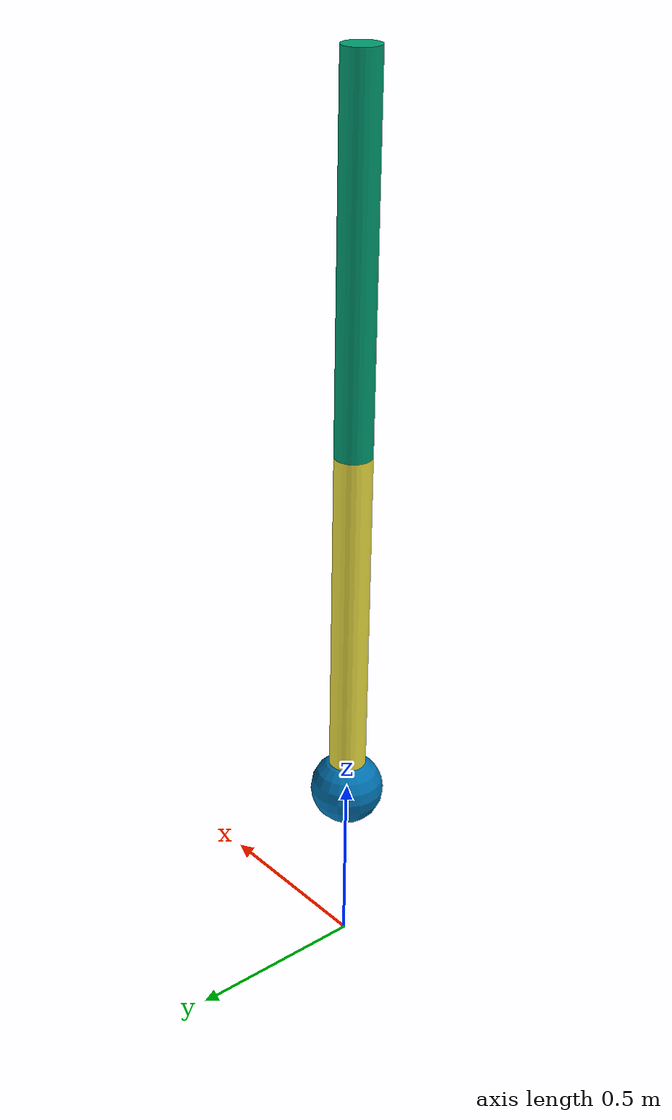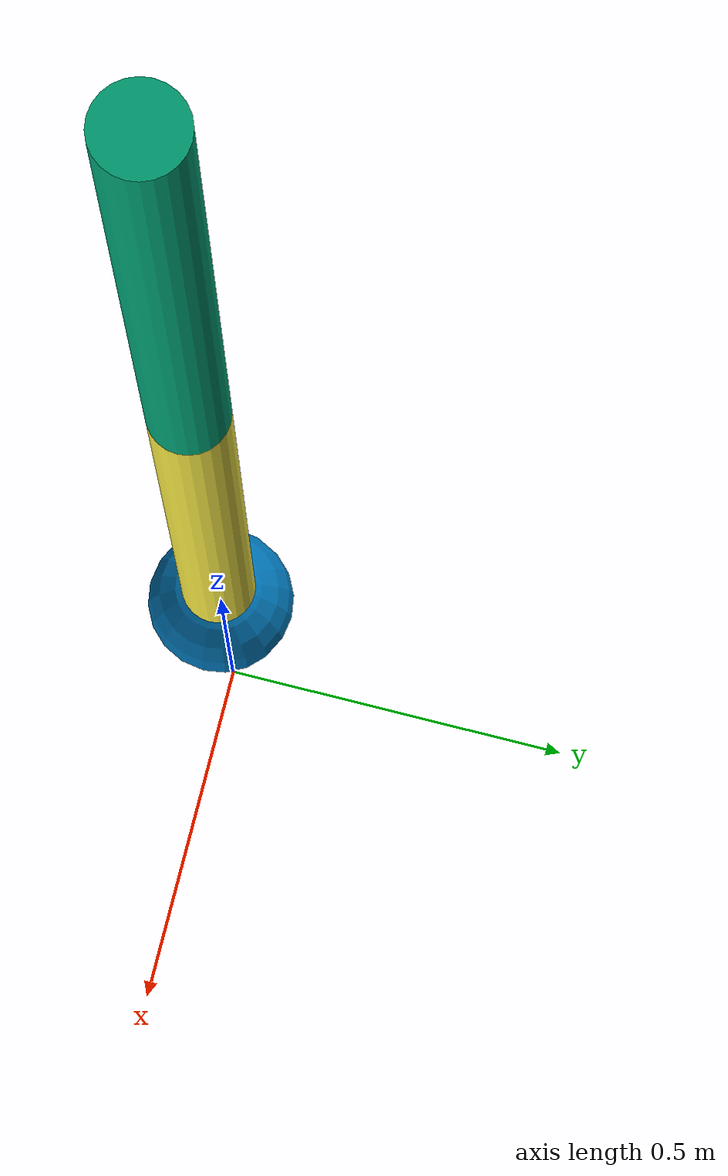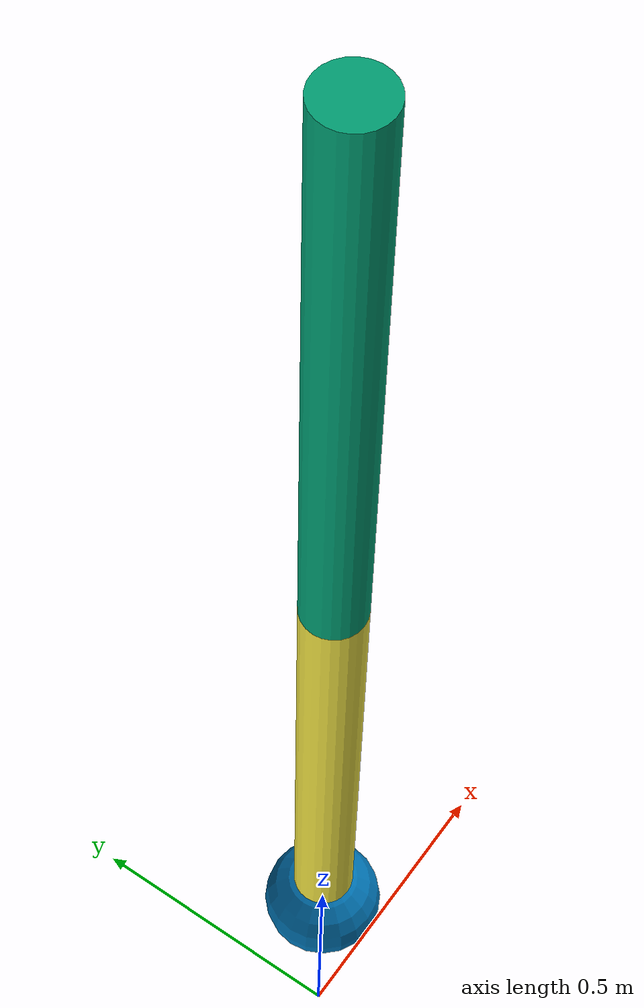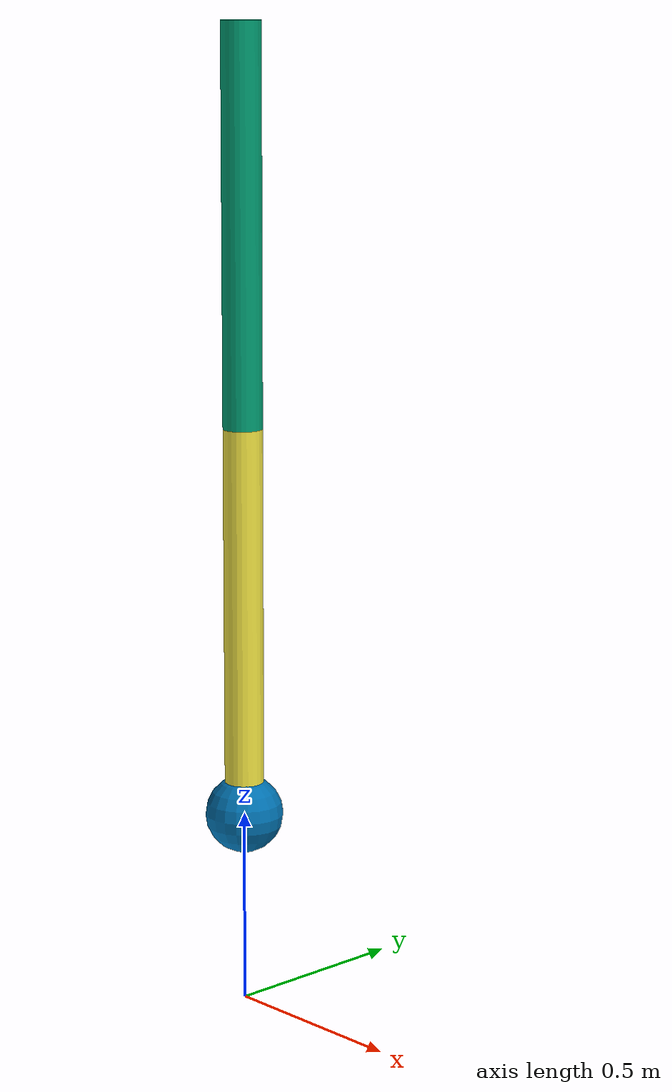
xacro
<?xml version="1.0"?>
<robot xmlns:xacro="http://www.ros.org/wiki/xacro" name="double_pendulum">
    <xacro:arg name="mujoco_model_path" default="/tmp/mujoco" />
    <xacro:arg name="autolimits" default="true" />
    <xacro:arg name="balanceinertia" default="true" />
    <!-- Mujoco options -->
    <xacro:arg name="integrator" default="implicitfast" />
    <xacro:arg name="gravity" default="0 0 -9.81" />
    <xacro:arg name="impratio" default="1" />
    <xacro:arg name="integrator" default="implicitfast" />
    <xacro:arg name="cone" default="elliptic" />
    <xacro:arg name="solver" default="Newton" />
    <xacro:arg name="noslip_iterations" default="3" />
    <xacro:arg name="multiccd" default="disable" />

    <!-- ROS2 Control-->
    <xacro:arg name="command_mode" default="effort" />

    <!-- disable GL sensors -->
    <xacro:arg name="with_visual_sensors" default="false" />

  <link name="world" />
  <link name="base_link"/>
  <joint name="world_to_base" type="fixed">
    <parent link="world"/>
    <child link="base_link"/>
    <origin xyz="0 0 2.5" rpy="0 3.14159 0"/>
  </joint>

  <!-- First link (upper arm) -->
  <link name="link1">
    <inertial>
      <mass value="1.0"/>
      <origin xyz="0 0 0.5" rpy="0 0 0"/>
      <inertia ixx="0.01" ixy="0" ixz="0" iyy="0.01" iyz="0" izz="0.01"/>
    </inertial>
    <visual>
      <geometry>
        <cylinder length="1.0" radius="0.05"/>
      </geometry>
      <origin xyz="0 0 0.5" rpy="0 0 0"/>
    </visual>
    <collision>
      <geometry>
        <cylinder length="1.0" radius="0.05"/>
      </geometry>
      <origin xyz="0 0 0.5" rpy="0 0 0"/>
    </collision>
  </link>

  <!-- Second link (lower arm) -->
  <link name="link2">
    <inertial>
      <mass value="1.0"/>
      <origin xyz="0 0 0.5" rpy="0 0 0"/>
      <inertia ixx="0.01" ixy="0" ixz="0" iyy="0.01" iyz="0" izz="0.01"/>
    </inertial>
    <visual>
      <geometry>
        <cylinder length="1.0" radius="0.05"/>
      </geometry>
      <origin xyz="0 0 0.5" rpy="0 0 0"/>
    </visual>
    <collision>
      <geometry>
        <cylinder length="1.0" radius="0.05"/>
      </geometry>
      <origin xyz="0 0 0.5" rpy="0 0 0"/>
    </collision>
  </link>

  <link name="link3">
    <inertial>
      <mass value="1.0"/>
      <origin xyz="0 0 0" rpy="0 0 0"/>
      <inertia ixx="0.01" ixy="0" ixz="0" iyy="0.01" iyz="0" izz="0.01"/>
    </inertial>
    <visual>
      <geometry>
        <sphere radius="0.1"/>
      </geometry>
      <origin xyz="0 0 0" rpy="0 0 0"/>
    </visual>
    <collision>
      <geometry>
        <sphere radius="0.1"/>
      </geometry>
      <origin xyz="0 0 0" rpy="0 0 0"/>
    </collision>
  </link>

  <!-- Joint between the base and the first link -->
  <joint name="joint1" type="revolute">
    <parent link="base_link"/>
    <child link="link1"/>
    <origin xyz="0 0 0" rpy="0 0 0"/>
    <axis xyz="0 1 0"/>
    <limit lower="-3.14" upper="3.14" effort="10" velocity="1"/>
  </joint>

  <!-- Joint between the first link and the second link -->
  <joint name="joint2" type="revolute">
    <parent link="link1"/>
    <child link="link2"/>
    <origin xyz="0 0 1.0" rpy="0 0 0"/>
    <axis xyz="0 1 0"/>
    <limit lower="-3.14" upper="3.14" effort="10" velocity="1"/>
  </joint>
  <joint name="joint3" type="fixed">
    <parent link="link2"/>
    <child link="link3"/>
    <origin xyz="0 0 1.0" rpy="0 0 0"/>
  </joint>

  <mujoco>
    <compiler meshdir="$(arg mujoco_model_path)/meshes"
              discardvisual="false"
              autolimits="$(arg autolimits)"
              balanceinertia="$(arg balanceinertia)"
    />
    <option integrator="$(arg integrator)"
            gravity="$(arg gravity)"
            impratio="$(arg impratio)"
            cone="$(arg cone)"
            solver="$(arg solver)"
            noslip_iterations="$(arg noslip_iterations)">
        <flag multiccd="$(arg multiccd)" />
    </option>
    <reference name="link3">
        <site name="link3" size="0.01" pos="0 0 0" />
    </reference>
    <sensor>
        <framepos name="link3_pos" objtype="body" objname="link3" reftype="body" refname="world"/>
        <framequat name="link3_quat" objtype="body" objname="link3" reftype="body" refname="world"/>
    </sensor>
    <sensor>
        <force name="link3_force" site="link3" />
        <torque name="link3_torque" site="link3" />
    </sensor>
    <sensor>
        <accelerometer name="link3-linear-acceleration" site="link3" noise="1e-2" cutoff="157"/>
        <gyro name="link3-angular-velocity" site="link3" noise="5e-4" cutoff="34.9"/>
    </sensor>
  </mujoco>

  <link name="test_camera_link"/>
  <joint name="world_to_test_camera" type="fixed">
    <parent link="world"/>
    <child link="test_camera_link"/>
    <origin xyz="2.0 0 1.5" rpy="0 0.6 3.14159"/>
  </joint>

  <xacro:if value="$(arg with_visual_sensors)">
    <xacro:include filename="$(find realsense2_description)/urdf/_d435i.urdf.xacro"/>
    <xacro:sensor_d435i parent="world" name="d435" use_nominal_extrinsics="true">
      <origin xyz="1.5 0 0.5" rpy="0 0.3 3.14159"/>
    </xacro:sensor_d435i>

    <mujoco>
      <reference name="test_camera_link">
        <camera name="test_camera" mode="fixed" fovy="45" quat="0.5 0.5 -0.5 -0.5"/>
      </reference>
      <reference name="base_link">
        <site name="mjLidar_scan"  size="0.01" pos="0 0 0.6"/>
        <site name="mjLidar_cloud" size="0.01" pos="0 0  0.2"/>
        <site name="declared_lidar" size="0.01" pos="0 0 0.4"/>
        <site name="mjLidar_claimed" size="0.01" pos="0 0 0.8"/>
      </reference>
      <!-- Site camera "d435": optical site -> color, depth site -> depth. -->
      <reference name="d435_color_optical_frame">
        <site name="mjCamOpt_d435" size="0.01" pos="0 0 0"/>
        <site name="declared_camera" size="0.01" pos="0 0 0"/>
      </reference>
      <reference name="d435_depth_optical_frame">
        <site name="mjCamDepth_d435" size="0.01" pos="0 0 0"/>
      </reference>
      <worldbody>
        <body name="color_target" pos="1.175 0 0.935">
          <geom type="box" size="0.6 0.6 0.6" rgba="1 0 0 1" contype="0" conaffinity="0"/>
        </body>
      </worldbody>
    </mujoco>

    <!-- The same camera and lidar implementations, reached through the plugin
         path instead of the site-prefix discovery. -->
    <mujoco_ros2_plugin name="declared_camera"
                        plugin="mujoco_ros2_control/DepthCameraSensor">
      <param name="site">declared_camera</param>
    </mujoco_ros2_plugin>
    <mujoco_ros2_plugin name="declared_lidar"
                        plugin="mujoco_ros2_control/LidarSensor">
      <param name="site">declared_lidar</param>
    </mujoco_ros2_plugin>
    <mujoco_ros2_plugin name="claimed"
                        plugin="mujoco_ros2_control/LidarSensor">
      <param name="site">mjLidar_claimed</param>
    </mujoco_ros2_plugin>
  </xacro:if>

    <ros2_control name="Unitree_H1_HardwareInterface" type="system">
        <hardware>
            <plugin>mujoco_ros2_control/MujocoSystem</plugin>
        </hardware>
        <xacro:macro name="configure_joint" params="joint_name initial_position command_mode">
          <joint name="${joint_name}">
            <xacro:if value="${command_mode == 'effort'}">
              <command_interface name="effort"/>
            </xacro:if>
            <xacro:if value="${command_mode == 'position'}">
              <command_interface name="position"/>
              <command_interface name="velocity"/>
            </xacro:if>
            <xacro:if value="${command_mode == 'velocity'}">
              <command_interface name="velocity"/>
            </xacro:if>
            <state_interface name="position">
              <param name="initial_value">${initial_position}</param>
            </state_interface>
            <state_interface name="velocity">
              <param name="initial_value">0.0</param>
            </state_interface>
            <state_interface name="effort"/>
          </joint>
        </xacro:macro>
      <xacro:configure_joint joint_name="joint1" initial_position="0.0" command_mode="$(arg command_mode)"/>
      <xacro:configure_joint joint_name="joint2" initial_position="0.0" command_mode="$(arg command_mode)"/>

      <sensor name="link3_imu">
        <param name="site">link3</param>
        <state_interface name="orientation.x"/>
        <state_interface name="orientation.y"/>
        <state_interface name="orientation.z"/>
        <state_interface name="orientation.w"/>
        <state_interface name="angular_velocity.x"/>
        <state_interface name="angular_velocity.y"/>
        <state_interface name="angular_velocity.z"/>
        <state_interface name="linear_acceleration.x"/>
        <state_interface name="linear_acceleration.y"/>
        <state_interface name="linear_acceleration.z"/>
      </sensor>

      <sensor name="link3_wrench">
        <param name="site">link3</param>
        <state_interface name="force.x"/>
        <state_interface name="force.y"/>
        <state_interface name="force.z"/>
        <state_interface name="torque.x"/>
        <state_interface name="torque.y"/>
        <state_interface name="torque.z"/>
      </sensor>

      <sensor name="link3_pose">
        <param name="body">link3</param>
        <state_interface name="position.x"/>
        <state_interface name="position.y"/>
        <state_interface name="position.z"/>
        <state_interface name="orientation.x"/>
        <state_interface name="orientation.y"/>
        <state_interface name="orientation.z"/>
        <state_interface name="orientation.w"/>
      </sensor>

    </ros2_control>
</robot>
